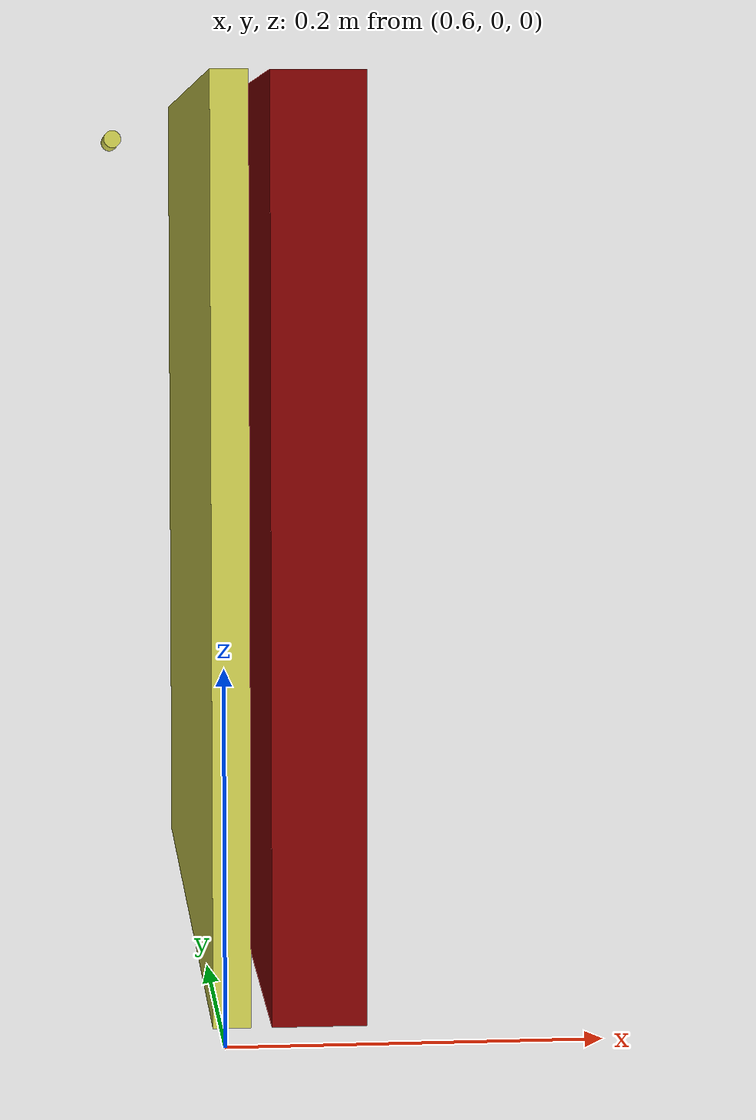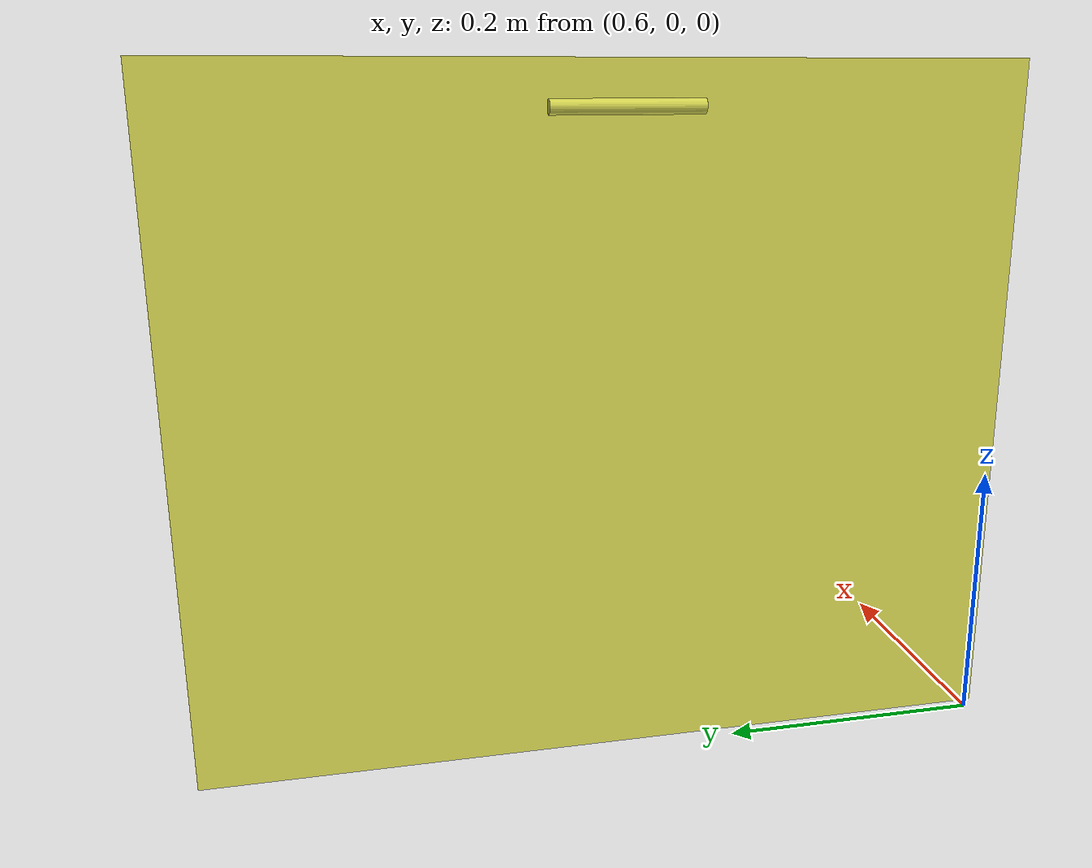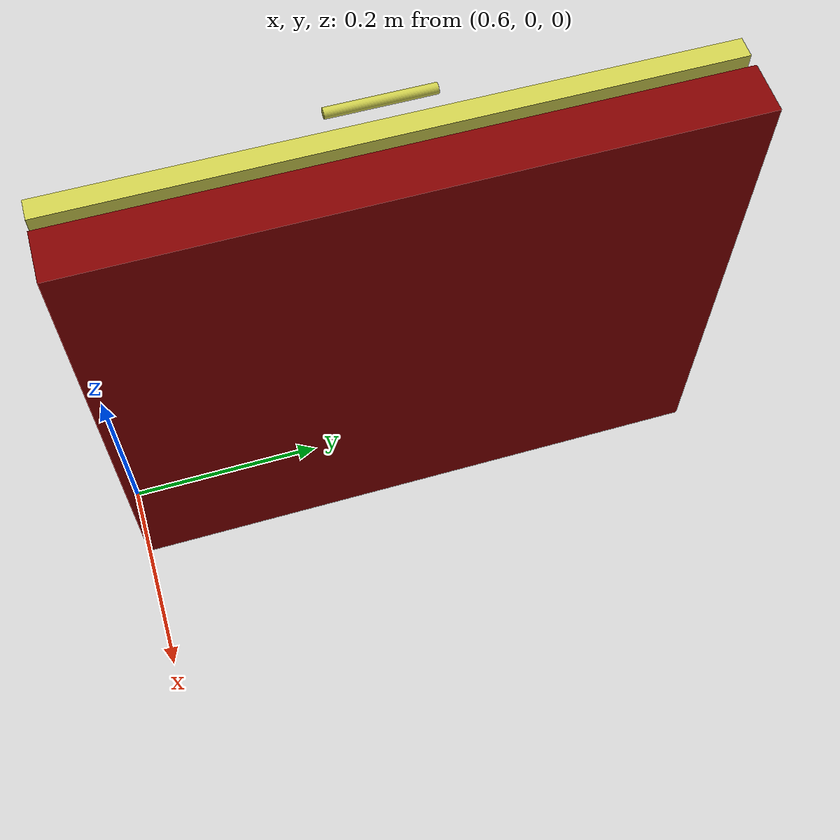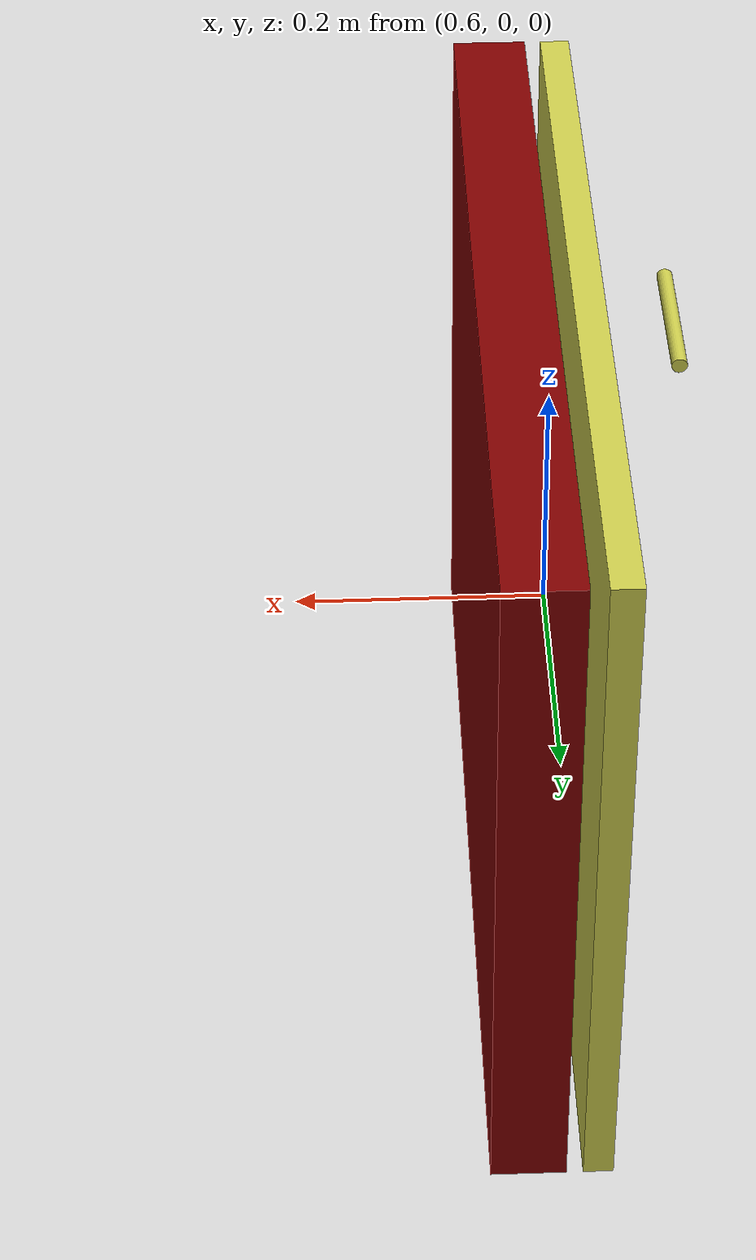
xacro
<?xml version="1.0" ?>
<robot name="door">
    <link name="world"/>
    <joint name="fixed" type="fixed">
        <parent link="world"/>
        <child link="drawer_frame"/>
        <origin xyz="0.65 0.3 0.01" rpy="0 0 3.14"/>
    </joint>

    <link name="drawer_frame">
        <visual>
            <origin rpy="0 0 0" xyz="0 0 0.25"/>
            <geometry>
                <box size="0.05 0.6 0.5"/>
            </geometry>
            <material name="frame_material">
                <color rgba="0.5 0.0 0.0 1"/>
            </material>
        </visual>
        <collision>
            <origin rpy="0 0 0" xyz="0 0 0.25"/>
            <geometry>
                <box size="0.05 0.6 0.5"/>
            </geometry>
        </collision>
    </link>

    <link name="drawer_link">
        <inertial>
            <origin rpy="0 0 0" xyz="0 0 0.25"/>
            <mass value="1.0"/>
            <inertia ixx="0.048966669" ixy="0" ixz="0" iyy="0.046466667" iyz="0" izz="0.0041666669"/>
        </inertial>
        <visual>
            <origin rpy="0 0 0" xyz="0 0 0.25"/>
            <geometry>
                <box size="0.02 0.6 0.5"/>
            </geometry>
            <material name="drawer_material">
                <color rgba="0.8 0.8 0.3 1"/>
            </material>
        </visual>
        <collision>
            <origin rpy="0 0 0" xyz="0 0 0.25"/>
            <geometry>
                <box size="0.02 0.6 0.5"/>
            </geometry>
        </collision>
    </link>

    <joint name="articulation_joint" type="prismatic">
        <parent link="drawer_frame"/>
        <child link="drawer_link"/>
        <dynamics damping="2.0" friction="4.0"/>
        <origin xyz="0.046 0 0"/>
        <axis xyz="1 0 0"/>
        <limit effort="100" lower="0" upper="0.5" velocity="10.0"/>
    </joint>

    <link name="handle_link">
        <inertial>
            <origin rpy="0 0 0" xyz="0 0 0"/>
            <mass value="0.1"/>
            <inertia ixx="0.001" ixy="0" ixz="0" iyy="0.001" iyz="0" izz="0.001"/>
        </inertial>
        <visual>
            <origin rpy="0 0 0" xyz="0 0 0"/>
            <geometry>
                <cylinder radius="0.005" length="0.10"/>
            </geometry>
            <material name="handle_matreial">
                <color rgba="0.8 0.8 0.3 1"/>
            </material>
        </visual>
        <collision>
            <origin rpy="0 0 0" xyz="0 0 0"/>
            <geometry>
                <cylinder radius="0.005" length="0.010"/>
            </geometry>
        </collision>
    </link>

    <joint name="handle_joint" type="fixed">
        <parent link="drawer_link"/>
        <child link="handle_link"/>
        <origin xyz="0.055 0 0.47" rpy="1.5708 0 0"/>
        <dynamics damping="1.0" friction="2.0"/>
        <axis xyz="0 1 0"/>
    </joint>
</robot>
